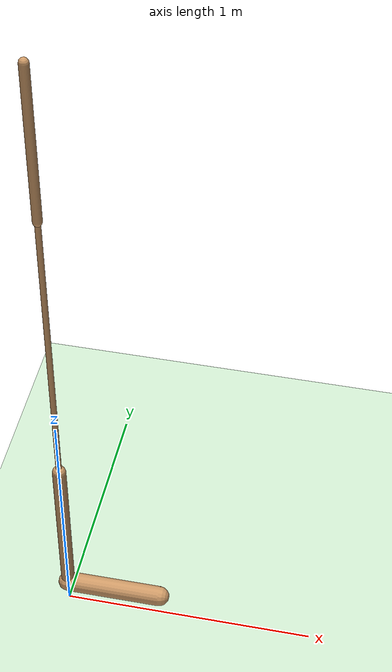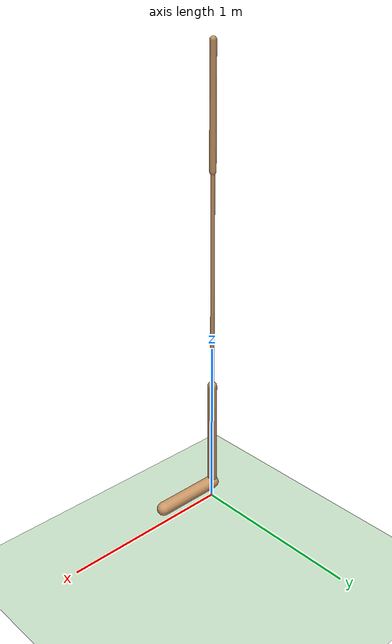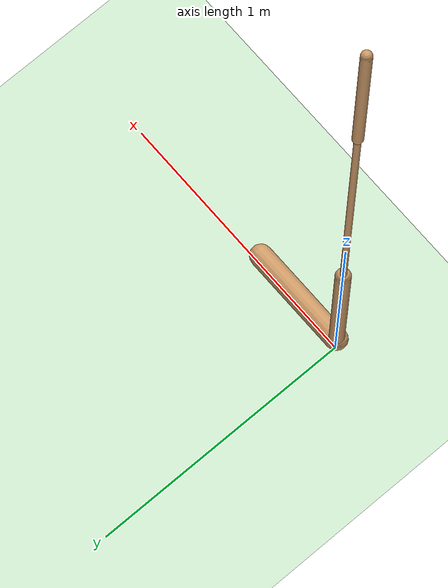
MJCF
<mujoco model="walker2d">
  <compiler angle="degree" inertiafromgeom="true" />
  <default>
    <joint armature="0.01" damping=".1" limited="true" />
    <geom conaffinity="0" condim="3" contype="1" density="1000" friction=".7 .1 .1" rgba="0.8 0.6 .4 1" />
  </default>
  <option integrator="RK4" timestep="0.002" />
  <worldbody>
    <light cutoff="100" diffuse="1 1 1" dir="-0 0 -1.3" directional="true" exponent="1" pos="0 0 1.3" specular=".1 .1 .1" />
    <geom conaffinity="1" condim="3" name="floor" pos="0 0 0" rgba="0.8 0.9 0.8 1" size="40 40 40" type="plane" material="MatPlane" />
    <body name="torso" pos="0 0 2.3363356947898866">
      <camera name="track" mode="trackcom" pos="0 -5 -1.25" xyaxes="1 0 0 0 0 1" />
      <joint armature="0" axis="1 0 0" damping="0" limited="false" name="rootx" pos="0 0 -1.25" stiffness="0" type="slide" />
      <joint armature="0" axis="0 0 1" damping="0" limited="false" name="rootz" pos="0 0 -1.25" ref="1.25" stiffness="0" type="slide" />
      <joint armature="0" axis="0 1 0" damping="0" limited="false" name="rooty" pos="0 0 0" stiffness="0" type="hinge" />
      <geom friction="0.9" name="torso_geom" size="0.017918366938829422 0.3204100728034973" type="capsule" />
      <body name="thigh" pos="0 0 -0.3204100728034973">
        <joint axis="0 -1 0" name="thigh_joint" pos="0 0 0" range="-150 0" type="hinge" />
        <site name="torso_thigh_site" pos="0 0 0" size="0.01" type="sphere" rgba="1 0 0 0.5" />
        <geom friction="0.9" pos="0 0 -0.6250384449958801" name="thigh_geom" size="0.011326031759381294 0.6250384449958801" type="capsule" />
        <body name="leg" pos="0 0 -1.5830012559890747">
          <joint axis="0 -1 0" name="leg_joint" pos="0 0 0.33292436599731445" range="-150 0" type="hinge" />
          <site name="thigh_leg_site" pos="0 0 0.25" size="0.01" type="sphere" rgba="1 0 0 0.5" />
          <geom friction="0.9" name="leg_geom" size="0.026943886652588844 0.33292436599731445" type="capsule" />
          <body name="foot" pos="0.38170188665390015 0 -0.43292436599731443">
            <joint axis="0 -1 0" name="foot_joint" pos="-0.38170188665390015 0 0.1" range="-45 45" type="hinge" />
            <site name="leg_foot_site" pos="-0.2 0 0.1" size="0.01" type="sphere" rgba="1 0 0 0.5" />
            <geom friction="0.9" pos="-0.19085094332695007 0 0.1" quat="0.70710678118654757 0 -0.70710678118654746 0" name="foot_geom" size="0.04000231251120567 0.19085094332695007" type="capsule" />
          </body>
        </body>
      </body>

      <body name="thigh_left" pos="0 0 -0.3204100728034973">
        <joint axis="0 -1 0" name="thigh_left_joint" pos="0 0 0" range="-150 0" type="hinge" />
        <site name="torso_thigh_left_site" pos="0 0 0" size="0.01" type="sphere" rgba="1 0 0 0.5" />
        <geom friction="0.9" name="thigh_left_geom" rgba=".7 .3 .6 1" size="0.011326031759381294 0.6250384449958801" pos="0 0 -0.6250384449958801" type="capsule" />
        <body name="leg_left" pos="0 0 -1.5830012559890747">
          <joint axis="0 -1 0" name="leg_left_joint" pos="0 0 0.33292436599731445" range="-150 0" type="hinge" />
          <site name="thigh_leg_left_site" pos="0 0 0.25" size="0.01" type="sphere" rgba="1 0 0 0.5" />
          <geom friction="0.9" name="leg_left_geom" rgba=".7 .3 .6 1" size="0.026943886652588844 0.33292436599731445" type="capsule" />
          <body name="foot_left" pos="0.38170188665390015 0 -0.43292436599731443">
            <joint axis="0 -1 0" name="foot_left_joint" pos="-0.38170188665390015 0 0.1" range="-45 45" type="hinge" />
            <site name="leg_foot_left_site" pos="-0.2 0 0.1" size="0.01" type="sphere" rgba="1 0 0 0.5" />
            <geom friction="1.9" name="foot_left_geom" rgba=".7 .3 .6 1" size="0.04000231251120567 0.19085094332695007" pos="-0.19085094332695007 0 0.1" type="capsule" quat="0.70710678118654757 0 -0.70710678118654746 0" />
          </body>
        </body>
      </body>
    </body>
  </worldbody>
  <actuator>

    <motor ctrllimited="true" ctrlrange="-1.0 1.0" gear="14.254098456803781" joint="thigh_joint" />
    <motor ctrllimited="true" ctrlrange="-1.0 1.0" gear="60.42352751514761" joint="leg_joint" />
    <motor ctrllimited="true" ctrlrange="-1.0 1.0" gear="84.83244942759438" joint="foot_joint" />
    <motor ctrllimited="true" ctrlrange="-1.0 1.0" gear="14.254098456803781" joint="thigh_left_joint" />
    <motor ctrllimited="true" ctrlrange="-1.0 1.0" gear="60.42352751514761" joint="leg_left_joint" />
    <motor ctrllimited="true" ctrlrange="-1.0 1.0" gear="84.83244942759438" joint="foot_left_joint" />

  </actuator>
    <asset>
        <texture type="skybox" builtin="gradient" rgb1=".4 .5 .6" rgb2="0 0 0" width="100" height="100" />
        <texture builtin="flat" height="1278" mark="cross" markrgb="1 1 1" name="texgeom" random="0.01" rgb1="0.8 0.6 0.4" rgb2="0.8 0.6 0.4" type="cube" width="127" />
        <texture builtin="checker" height="100" name="texplane" rgb1="0 0 0" rgb2="0.8 0.8 0.8" type="2d" width="100" />
        <material name="MatPlane" reflectance="0.5" shininess="1" specular="1" texrepeat="60 60" texture="texplane" />
        <material name="geom" texture="texgeom" texuniform="true" />
    </asset>

  <sensor>
    <force site="torso_thigh_site" name="torso_thigh_sensor" />
    <force site="thigh_leg_site" name="thigh_leg_sensor" />
    <force site="leg_foot_site" name="leg_foot_sensor" />
    <force site="torso_thigh_left_site" name="torso_thigh_left_sensor" />
    <force site="thigh_leg_left_site" name="thigh_leg_left_sensor" />
    <force site="leg_foot_left_site" name="leg_foot_left_sensor" />
  </sensor>
</mujoco>
